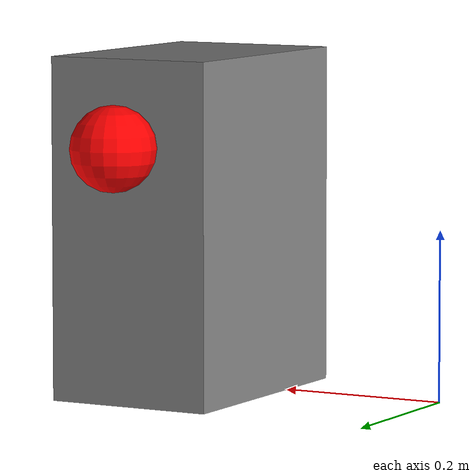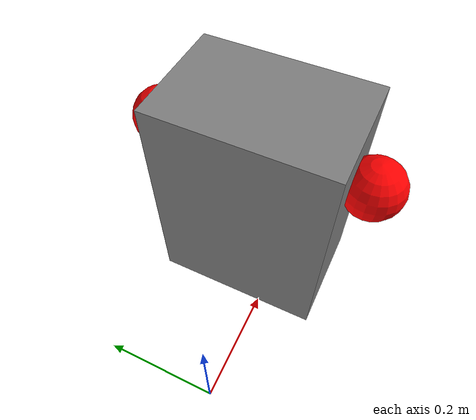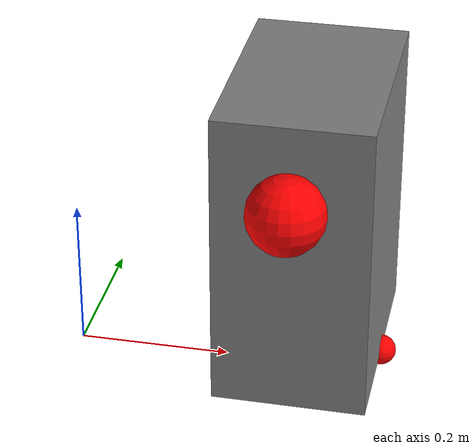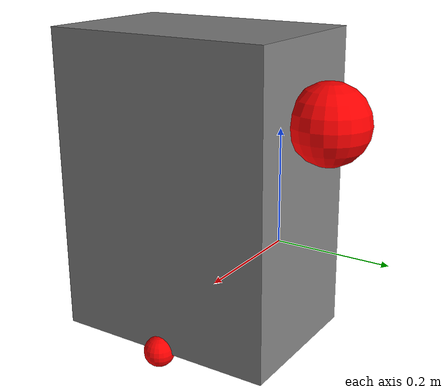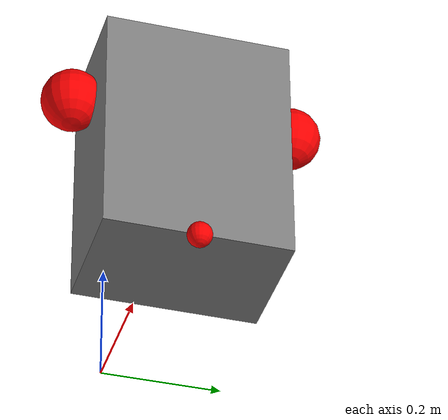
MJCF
<?xml version="1.0"?>
<mujoco model="suitcase">
  <!-- World body -->
  <worldbody>
    <body name="suitcase_body" pos="0.4 0.05 0">
      <freejoint name="suitcase_root"/>
      <inertial mass="2.0" pos="-0.1 0 0.2" diaginertia="0.0334 0.02167 0.04167"/>

      <site name="suitcase_root" pos="0 0 0" size="0.02" rgba="1 0 0 1"/>
      <site name="left_hand_contact" pos="-0.1 -0.18 0.3" size="0.05" rgba="1 0 0 1"/>
      <site name="right_hand_contact" pos="-0.1 0.18 0.3" size="0.05" rgba="1 0 0 1"/>
      <geom type="box" size="0.1 0.15 0.2" pos="-0.1 0.0 0.2"/>
    </body>
  </worldbody>

  <sensor>
    <framepos name="suitcase_pos" objtype="xbody" objname="suitcase_body"/>
    <framequat name="suitcase_quat" objtype="xbody" objname="suitcase_body"/>
  </sensor>

</mujoco>
